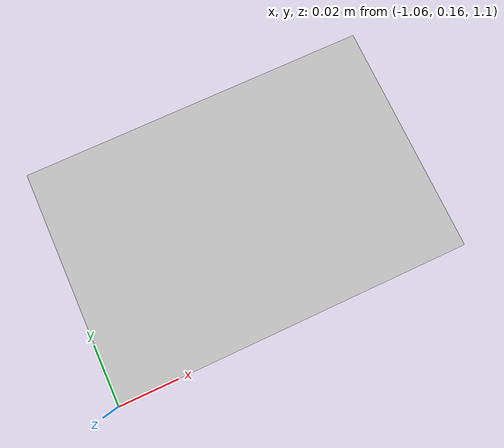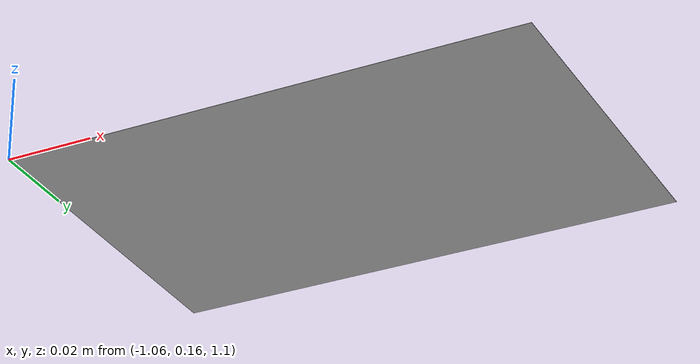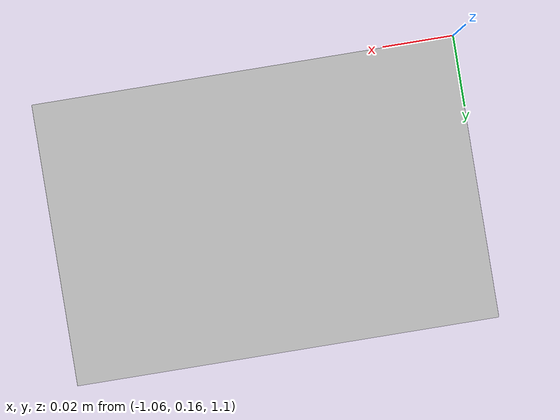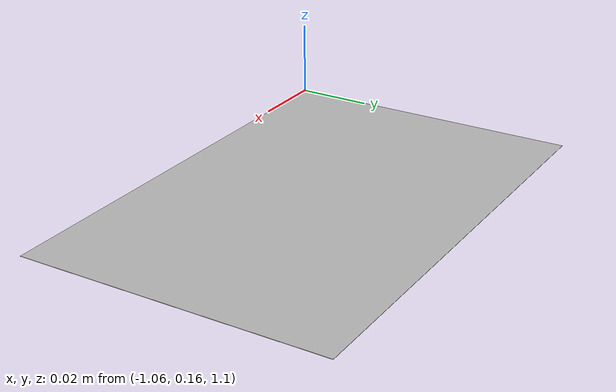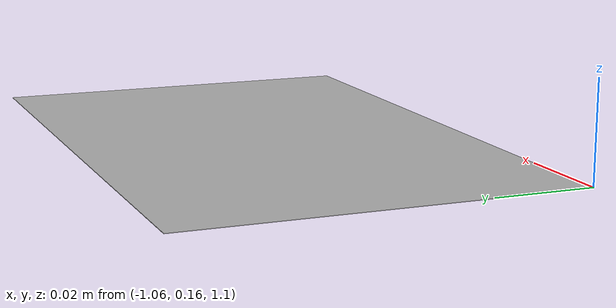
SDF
<?xml version="1.0"?>
<sdf version="1.6">
  <model name="warehouse">
    <static>true</static>
    <link name="link">
      <pose>-1 0.2 1.1 0 0 0</pose>
      <visual name="visual">
        <geometry>
          <mesh>
            <uri>model://warehouse/meshes/warehouse.dae</uri>
            <scale>0.01 0.01 0.01</scale>
          </mesh>
        </geometry>
      </visual>
    </link>
  </model>
</sdf>
